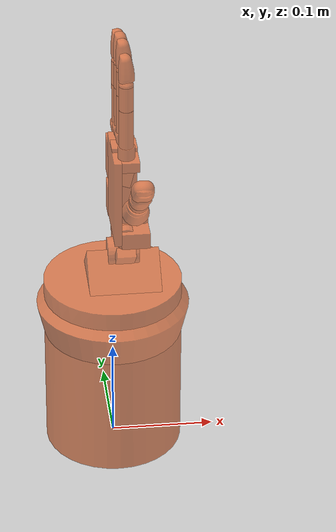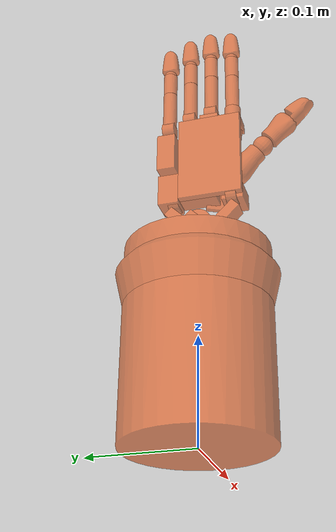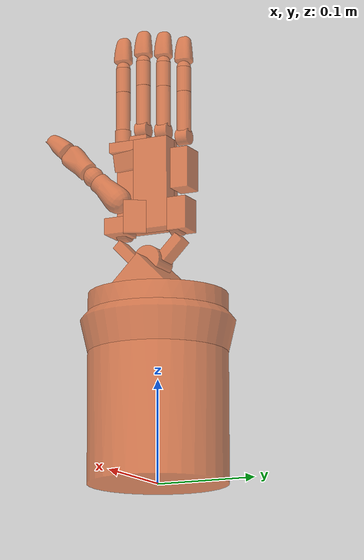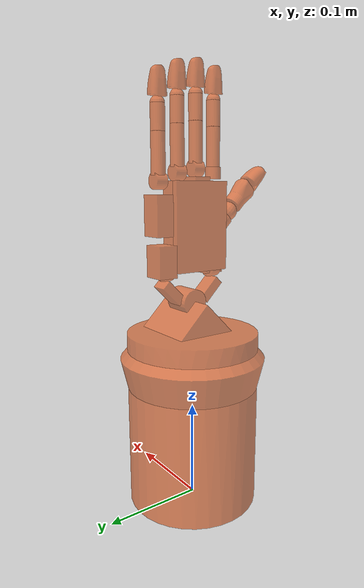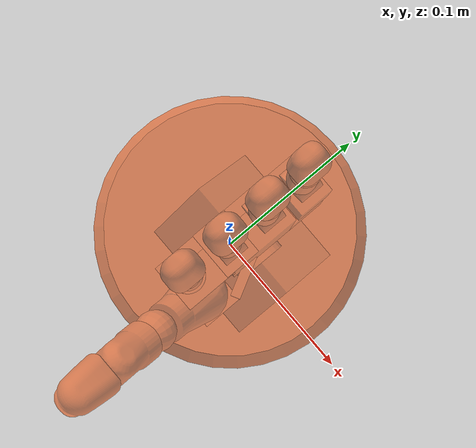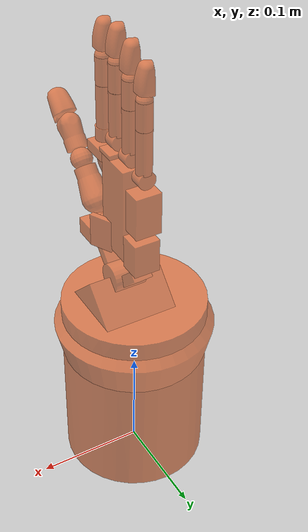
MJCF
<mujoco model="shadow_left">
  <compiler angle="radian" autolimits="true" />
  <option gravity="0 0 0" timestep="0.001" />
  <visual>
    <global offwidth="3840" offheight="2160" />
  </visual>
  <asset>
    <mesh name="forearm_E3M5_collision000" content_type="model/obj" file="meshes/collision/forearm_E3M5_collision000.obj" />
    <mesh name="forearm_E3M5_collision001" content_type="model/obj" file="meshes/collision/forearm_E3M5_collision001.obj" />
    <mesh name="forearm_E3M5_collision002" content_type="model/obj" file="meshes/collision/forearm_E3M5_collision002.obj" />
    <mesh name="f_knuckle_E3M5_collision000" content_type="model/obj" file="meshes/collision/f_knuckle_E3M5_collision000.obj" />
    <mesh name="f_distal_pst_collision000" content_type="model/obj" file="meshes/collision/f_distal_pst_collision000.obj" />
    <mesh name="th_proximal_E3M5_collision000" content_type="model/obj" file="meshes/collision/th_proximal_E3M5_collision000.obj" />
    <mesh name="th_middle_E3M5_collision000" content_type="model/obj" file="meshes/collision/th_middle_E3M5_collision000.obj" />
    <mesh name="th_distal_pst_collision000" content_type="model/obj" file="meshes/collision/th_distal_pst_collision000.obj" />
    <texture type="skybox" builtin="gradient" rgb1="1 1 1" rgb2="1 1 1" width="32" height="512" />
  </asset>
  <worldbody>
    <light pos="0 0 5" dir="0 0 -1" directional="true" />
    <body name="hand_root">
      <body name="forearm" quat="0.707109 0 0 0.707105">
        <inertial pos="0 0 0.09" mass="3" diaginertia="0.0138 0.0138 0.00744" />
        <geom name="forearm_collision_part000" type="mesh" mesh="forearm_E3M5_collision000" group="1" rgba="0.9 0.35 0.1 0.65" />
        <geom name="forearm_collision_part001" type="mesh" mesh="forearm_E3M5_collision001" group="1" rgba="0.9 0.35 0.1 0.65" />
        <geom name="forearm_collision_part002" type="mesh" mesh="forearm_E3M5_collision002" group="1" rgba="0.9 0.35 0.1 0.65" />
        <geom size="0.035 0.035 0.035" pos="0 -0.01 0.165" quat="0.92388 0 0.382682 0" type="box" group="1" rgba="0.9 0.35 0.1 0.65" />
        <body name="wrist" pos="0 -0.01 0.21301">
          <inertial pos="0 0 0.029" quat="0.5 0.5 0.5 0.5" mass="0.1" diaginertia="6.4e-05 4.38e-05 3.5e-05" />
          <joint name="WRJ2" pos="0 0 0" axis="0 -1 0" range="-0.523599 0.174533" actuatorfrcrange="-10 10" damping="0.1" armature="0.0002" frictionloss="0.0" />
          <geom size="0.0135 0.015" quat="0.499998 0.5 0.5 -0.500002" type="cylinder" group="1" rgba="0.9 0.35 0.1 0.65" />
          <geom size="0.011 0.005" pos="0.026 0 0.034" quat="0.707105 0 0.707108 0" type="cylinder" group="1" rgba="0.9 0.35 0.1 0.65" />
          <geom size="0.011 0.005" pos="-0.031 0 0.034" quat="0.707105 0 0.707108 0" type="cylinder" group="1" rgba="0.9 0.35 0.1 0.65" />
          <geom size="0.0135 0.009 0.005" pos="0.021 0 0.011" quat="0.923879 0 -0.382684 0" type="box" group="1" rgba="0.9 0.35 0.1 0.65" />
          <geom size="0.0135 0.009 0.005" pos="-0.026 0 0.01" quat="0.923879 0 0.382684 0" type="box" group="1" rgba="0.9 0.35 0.1 0.65" />
          <body name="palm" pos="0 0 0.034">
            <inertial pos="0 0 0.035" quat="0.707107 0 0 0.707107" mass="0.3" diaginertia="0.0005287 0.0003581 0.000191" />
            <joint name="WRJ1" pos="0 0 0" axis="1 0 0" range="-0.698132 0.488692" actuatorfrcrange="-30 30" damping="0.1" armature="0.0002" frictionloss="0.0" />
            <geom size="0.031 0.0035 0.045" pos="-0.011 0.0085 0.042" type="box" group="1" rgba="0.9 0.35 0.1 0.65" />
            <geom size="0.018 0.0085 0.045" pos="0.002 -0.0035 0.042" type="box" group="1" rgba="0.9 0.35 0.1 0.65" />
            <geom size="0.013 0.0085 0.005" pos="-0.029 -0.0035 0.082" type="box" group="1" rgba="0.9 0.35 0.1 0.65" />
            <geom size="0.013 0.007 0.009" pos="-0.0265 -0.001 0.07" quat="0.987241 0.0990545 -0.0124467 -0.124052" type="box" group="1" rgba="0.9 0.35 0.1 0.65" />
            <geom size="0.0105 0.0135 0.008" pos="-0.0315 -0.0085 0.001" type="box" group="1" rgba="0.9 0.35 0.1 0.65" />
            <geom size="0.011 0.0025 0.016" pos="-0.0125 -0.015 0.009" quat="0.971338 0 0 0.237703" type="box" group="1" rgba="0.9 0.35 0.1 0.65" />
            <geom size="0.009 0.012 0.002" pos="-0.011 0 0.089" type="box" group="1" rgba="0.9 0.35 0.1 0.65" />
            <geom size="0.01 0.012 0.016" pos="0.03 0 0.009" type="box" group="1" rgba="0.9 0.35 0.1 0.65" />
            <body name="ee_link" />
            <body name="imu" pos="0.01785 0.00765 0.049125" quat="2.31079e-07 -2.31079e-07 0.707107 0.707107" />
            <body name="ffknuckle" pos="-0.033 0 0.095">
              <inertial pos="0 0 0" quat="0.5 0.5 -0.5 0.5" mass="0.008" diaginertia="3.2e-07 2.6e-07 2.6e-07" />
              <joint name="FFJ4" pos="0 0 0" axis="0 1 0" range="-0.349066 0.349066" actuatorfrcrange="-2 2" damping="0.1" armature="0.0002" frictionloss="0.0" />
              <geom quat="0.707105 0 0.707108 0" type="mesh" mesh="f_knuckle_E3M5_collision000" group="1" rgba="0.9 0.35 0.1 0.65" />
              <body name="ffproximal">
                <inertial pos="0 0 0.0225" quat="0.707107 0 0 0.707107" mass="0.03" diaginertia="1e-05 9.8e-06 1.8e-06" />
                <joint name="FFJ3" pos="0 0 0" axis="1 0 0" range="-0.261799 1.5708" actuatorfrcrange="-2 2" damping="0.1" armature="0.0002" frictionloss="0.0" />
                <geom size="0.007 0.02" pos="0 0 0.025" type="cylinder" group="1" rgba="0.9 0.35 0.1 0.65" />
                <body name="ffmiddle" pos="0 0 0.045">
                  <inertial pos="0 0 0.0125" quat="0.707107 0 0 0.707107" mass="0.017" diaginertia="2.7e-06 2.6e-06 8.7e-07" />
                  <joint name="FFJ2" pos="0 0 0" axis="1 0 0" range="0 1.5708" actuatorfrcrange="-2 2" damping="0.1" armature="0.0002" frictionloss="0.0" />
                  <geom size="0.007 0.0125" pos="0 0 0.0125" type="cylinder" group="1" rgba="0.9 0.35 0.1 0.65" />
                  <geom size="0.007" group="1" rgba="0.9 0.35 0.1 0.65" />
                  <geom size="0.007" pos="0 0 0.025" group="1" rgba="0.9 0.35 0.1 0.65" />
                  <body name="ffdistal" pos="0 0 0.025">
                    <inertial pos="0 0 0.012" quat="0.707107 0 0 0.707107" mass="0.12" diaginertia="1.1e-05 9.4e-06 5.3e-06" />
                    <joint name="FFJ1" pos="0 0 0" axis="1 0 0" range="0 1.5708" actuatorfrcrange="-2 2" damping="0.1" armature="0.0002" frictionloss="0.0" />
                    <geom type="mesh" mesh="f_distal_pst_collision000" group="1" rgba="0.9 0.35 0.1 0.65" />
                    <body name="fftip" pos="0 0 0.026">
                      <inertial pos="0 0 0" mass="0.001" diaginertia="0 0 0" />
                    </body>
                  </body>
                </body>
              </body>
            </body>
            <body name="mfknuckle" pos="-0.011 0 0.099">
              <inertial pos="0 0 0" quat="0.5 0.5 -0.5 0.5" mass="0.008" diaginertia="3.2e-07 2.6e-07 2.6e-07" />
              <joint name="MFJ4" pos="0 0 0" axis="0 1 0" range="-0.349066 0.349066" actuatorfrcrange="-2 2" damping="0.1" armature="0.0002" frictionloss="0.0" />
              <geom type="mesh" mesh="f_knuckle_E3M5_collision000" group="1" rgba="0.9 0.35 0.1 0.65" />
              <body name="mfproximal">
                <inertial pos="0 0 0.0225" quat="0.707107 0 0 0.707107" mass="0.03" diaginertia="1e-05 9.8e-06 1.8e-06" />
                <joint name="MFJ3" pos="0 0 0" axis="1 0 0" range="-0.261799 1.5708" actuatorfrcrange="-2 2" damping="0.1" armature="0.0002" frictionloss="0.0" />
                <geom size="0.007 0.02" pos="0 0 0.025" type="cylinder" group="1" rgba="0.9 0.35 0.1 0.65" />
                <body name="mfmiddle" pos="0 0 0.045">
                  <inertial pos="0 0 0.0125" quat="0.707107 0 0 0.707107" mass="0.017" diaginertia="2.7e-06 2.6e-06 8.7e-07" />
                  <joint name="MFJ2" pos="0 0 0" axis="1 0 0" range="0 1.5708" actuatorfrcrange="-2 2" damping="0.1" armature="0.0002" frictionloss="0.0" />
                  <geom size="0.007 0.0125" pos="0 0 0.0125" type="cylinder" group="1" rgba="0.9 0.35 0.1 0.65" />
                  <geom size="0.007" group="1" rgba="0.9 0.35 0.1 0.65" />
                  <geom size="0.007" pos="0 0 0.025" group="1" rgba="0.9 0.35 0.1 0.65" />
                  <body name="mfdistal" pos="0 0 0.025">
                    <inertial pos="0 0 0.012" quat="0.707107 0 0 0.707107" mass="0.12" diaginertia="1.1e-05 9.4e-06 5.3e-06" />
                    <joint name="MFJ1" pos="0 0 0" axis="1 0 0" range="0 1.5708" actuatorfrcrange="-2 2" damping="0.1" armature="0.0002" frictionloss="0.0" />
                    <geom type="mesh" mesh="f_distal_pst_collision000" group="1" rgba="0.9 0.35 0.1 0.65" />
                    <body name="mftip" pos="0 0 0.026">
                      <inertial pos="0 0 0" mass="0.001" diaginertia="0 0 0" />
                    </body>
                  </body>
                </body>
              </body>
            </body>
            <body name="rfknuckle" pos="0.011 0 0.095">
              <inertial pos="0 0 0" quat="0.5 0.5 -0.5 0.5" mass="0.008" diaginertia="3.2e-07 2.6e-07 2.6e-07" />
              <joint name="RFJ4" pos="0 0 0" axis="0 -1 0" range="-0.349066 0.349066" actuatorfrcrange="-2 2" damping="0.1" armature="0.0002" frictionloss="0.0" />
              <geom type="mesh" mesh="f_knuckle_E3M5_collision000" group="1" rgba="0.9 0.35 0.1 0.65" />
              <body name="rfproximal">
                <inertial pos="0 0 0.0225" quat="0.707107 0 0 0.707107" mass="0.03" diaginertia="1e-05 9.8e-06 1.8e-06" />
                <joint name="RFJ3" pos="0 0 0" axis="1 0 0" range="-0.261799 1.5708" actuatorfrcrange="-2 2" damping="0.1" armature="0.0002" frictionloss="0.0" />
                <geom size="0.007 0.02" pos="0 0 0.025" type="cylinder" group="1" rgba="0.9 0.35 0.1 0.65" />
                <body name="rfmiddle" pos="0 0 0.045">
                  <inertial pos="0 0 0.0125" quat="0.707107 0 0 0.707107" mass="0.017" diaginertia="2.7e-06 2.6e-06 8.7e-07" />
                  <joint name="RFJ2" pos="0 0 0" axis="1 0 0" range="0 1.5708" actuatorfrcrange="-2 2" damping="0.1" armature="0.0002" frictionloss="0.0" />
                  <geom size="0.007 0.0125" pos="0 0 0.0125" type="cylinder" group="1" rgba="0.9 0.35 0.1 0.65" />
                  <geom size="0.007" group="1" rgba="0.9 0.35 0.1 0.65" />
                  <geom size="0.007" pos="0 0 0.025" group="1" rgba="0.9 0.35 0.1 0.65" />
                  <body name="rfdistal" pos="0 0 0.025">
                    <inertial pos="0 0 0.012" quat="0.707107 0 0 0.707107" mass="0.12" diaginertia="1.1e-05 9.4e-06 5.3e-06" />
                    <joint name="RFJ1" pos="0 0 0" axis="1 0 0" range="0 1.5708" actuatorfrcrange="-2 2" damping="0.1" armature="0.0002" frictionloss="0.0" />
                    <geom type="mesh" mesh="f_distal_pst_collision000" group="1" rgba="0.9 0.35 0.1 0.65" />
                    <body name="rftip" pos="0 0 0.026">
                      <inertial pos="0 0 0" mass="0.001" diaginertia="0 0 0" />
                    </body>
                  </body>
                </body>
              </body>
            </body>
            <body name="lfmetacarpal" pos="0.033 0 0.02071" quat="0.887018 0 0.461735 0">
              <inertial pos="0.0317487 0 0.0223529" quat="0.707107 0 0 0.707107" mass="0.03" diaginertia="1.638e-05 1.45e-05 4.272e-06" />
              <joint name="LFJ5" pos="0 0 0" axis="1 0 0" range="0 0.785398" actuatorfrcrange="-2 2" damping="0.1" armature="0.0002" frictionloss="0.0" />
              <geom size="0.009 0.012 0.02" pos="-0.0269864 0 0.019" quat="0.887018 0 -0.461735 0" type="box" group="1" rgba="0.9 0.35 0.1 0.65" />
              <body name="lfknuckle" pos="-0.0539727 0 0.0377946" quat="0.887018 0 -0.461735 0">
                <inertial pos="0 0 0" quat="0.5 0.5 -0.5 0.5" mass="0.008" diaginertia="3.2e-07 2.6e-07 2.6e-07" />
                <joint name="LFJ4" pos="0 0 0" axis="0 -1 0" range="-0.349066 0.349066" actuatorfrcrange="-2 2" damping="0.1" armature="0.0002" frictionloss="0.0" />
                <geom type="mesh" mesh="f_knuckle_E3M5_collision000" group="1" rgba="0.9 0.35 0.1 0.65" />
                <body name="lfproximal">
                  <inertial pos="0 0 0.0225" quat="0.707107 0 0 0.707107" mass="0.03" diaginertia="1e-05 9.8e-06 1.8e-06" />
                  <joint name="LFJ3" pos="0 0 0" axis="1 0 0" range="-0.261799 1.5708" actuatorfrcrange="-2 2" damping="0.1" armature="0.0002" frictionloss="0.0" />
                  <geom size="0.007 0.02" pos="0 0 0.025" type="cylinder" group="1" rgba="0.9 0.35 0.1 0.65" />
                  <body name="lfmiddle" pos="0 0 0.045">
                    <inertial pos="0 0 0.0125" quat="0.707107 0 0 0.707107" mass="0.017" diaginertia="2.7e-06 2.6e-06 8.7e-07" />
                    <joint name="LFJ2" pos="0 0 0" axis="1 0 0" range="0 1.5708" actuatorfrcrange="-2 2" damping="0.1" armature="0.0002" frictionloss="0.0" />
                    <geom size="0.007 0.0125" pos="0 0 0.0125" type="cylinder" group="1" rgba="0.9 0.35 0.1 0.65" />
                    <geom size="0.007" group="1" rgba="0.9 0.35 0.1 0.65" />
                    <geom size="0.007" pos="0 0 0.025" group="1" rgba="0.9 0.35 0.1 0.65" />
                    <body name="lfdistal" pos="0 0 0.025">
                      <inertial pos="0 0 0.012" quat="0.707107 0 0 0.707107" mass="0.12" diaginertia="1.1e-05 9.4e-06 5.3e-06" />
                      <joint name="LFJ1" pos="0 0 0" axis="1 0 0" range="0 1.5708" actuatorfrcrange="-2 2" damping="0.1" armature="0.0002" frictionloss="0.0" />
                      <geom type="mesh" mesh="f_distal_pst_collision000" group="1" rgba="0.9 0.35 0.1 0.65" />
                      <body name="lftip" pos="0 0 0.026">
                        <inertial pos="0 0 0" mass="0.001" diaginertia="0 0 0" />
                      </body>
                    </body>
                  </body>
                </body>
              </body>
            </body>
            <body name="thbase" pos="-0.034 -0.00858 0.029" quat="0.653281 -0.270598 -0.270598 0.653281">
              <inertial pos="0 0 0" mass="0.01" diaginertia="1.6e-07 1.6e-07 1.6e-07" />
              <joint name="THJ5" pos="0 0 0" axis="0 0 1" range="-1.0472 1.0472" actuatorfrcrange="-5 5" damping="0.1" armature="0.0002" frictionloss="0.0" />
              <geom size="0.011" group="1" rgba="0.9 0.35 0.1 0.65" />
              <body name="thproximal">
                <inertial pos="0 0 0.019" mass="0.04" diaginertia="1.36e-05 1.36e-05 3.13e-06" />
                <joint name="THJ4" pos="0 0 0" axis="0 -1 0" range="0 1.22173" actuatorfrcrange="-3 3" damping="0.1" armature="0.0002" frictionloss="0.0" />
                <geom quat="0.707107 0 0 0.707107" type="mesh" mesh="th_proximal_E3M5_collision000" group="1" rgba="0.9 0.35 0.1 0.65" />
                <body name="thhub" pos="0 0 0.038">
                  <inertial pos="0 0 0" mass="0.005" diaginertia="1e-06 1e-06 3e-07" />
                  <joint name="THJ3" pos="0 0 0" axis="0 -1 0" range="-0.20944 0.20944" actuatorfrcrange="-2 2" damping="0.1" armature="0.0002" frictionloss="0.0" />
                  <geom size="0.01" group="1" rgba="0.9 0.35 0.1 0.65" />
                  <body name="thmiddle">
                    <inertial pos="0 0 0.016" mass="0.02" diaginertia="5.1e-06 5.1e-06 1.21e-06" />
                    <joint name="THJ2" pos="0 0 0" axis="1 0 0" range="-0.698132 0.698132" actuatorfrcrange="-2 2" damping="0.1" armature="0.0002" frictionloss="0.0" />
                    <geom type="mesh" mesh="th_middle_E3M5_collision000" group="1" rgba="0.9 0.35 0.1 0.65" />
                    <body name="thdistal" pos="0 0 0.032">
                      <inertial pos="0 0 0.01375" quat="0.707107 0 0 0.707107" mass="0.16" diaginertia="2.2e-05 2.1e-05 1e-05" />
                      <joint name="THJ1" pos="0 0 0" axis="1 0 0" range="-0.261799 1.5708" actuatorfrcrange="-1 1" damping="0.1" armature="0.0002" frictionloss="0.0" />
                      <geom type="mesh" mesh="th_distal_pst_collision000" group="1" rgba="0.9 0.35 0.1 0.65" />
                      <body name="thtip" pos="0 0 0.0275">
                        <inertial pos="0 0 0" mass="0.001" diaginertia="0 0 0" />
                      </body>
                    </body>
                  </body>
                </body>
              </body>
            </body>
          </body>
        </body>
      </body>
    </body>
  </worldbody>
  <contact>
    <exclude name="ex_forearm_wrist" body1="forearm" body2="wrist" />
    <exclude name="ex_wrist_palm" body1="wrist" body2="palm" />
    <exclude name="ex_palm_ee_link" body1="palm" body2="ee_link" />
    <exclude name="ex_palm_imu" body1="palm" body2="imu" />
    <exclude name="ex_palm_ffknuckle" body1="palm" body2="ffknuckle" />
    <exclude name="ex_ffknuckle_ffproximal" body1="ffknuckle" body2="ffproximal" />
    <exclude name="ex_ffproximal_ffmiddle" body1="ffproximal" body2="ffmiddle" />
    <exclude name="ex_ffmiddle_ffdistal" body1="ffmiddle" body2="ffdistal" />
    <exclude name="ex_ffdistal_fftip" body1="ffdistal" body2="fftip" />
    <exclude name="ex_palm_mfknuckle" body1="palm" body2="mfknuckle" />
    <exclude name="ex_mfknuckle_mfproximal" body1="mfknuckle" body2="mfproximal" />
    <exclude name="ex_mfproximal_mfmiddle" body1="mfproximal" body2="mfmiddle" />
    <exclude name="ex_mfmiddle_mfdistal" body1="mfmiddle" body2="mfdistal" />
    <exclude name="ex_mfdistal_mftip" body1="mfdistal" body2="mftip" />
    <exclude name="ex_palm_rfknuckle" body1="palm" body2="rfknuckle" />
    <exclude name="ex_rfknuckle_rfproximal" body1="rfknuckle" body2="rfproximal" />
    <exclude name="ex_rfproximal_rfmiddle" body1="rfproximal" body2="rfmiddle" />
    <exclude name="ex_rfmiddle_rfdistal" body1="rfmiddle" body2="rfdistal" />
    <exclude name="ex_rfdistal_rftip" body1="rfdistal" body2="rftip" />
    <exclude name="ex_palm_lfmetacarpal" body1="palm" body2="lfmetacarpal" />
    <exclude name="ex_lfmetacarpal_lfknuckle" body1="lfmetacarpal" body2="lfknuckle" />
    <exclude name="ex_lfknuckle_lfproximal" body1="lfknuckle" body2="lfproximal" />
    <exclude name="ex_lfproximal_lfmiddle" body1="lfproximal" body2="lfmiddle" />
    <exclude name="ex_lfmiddle_lfdistal" body1="lfmiddle" body2="lfdistal" />
    <exclude name="ex_lfdistal_lftip" body1="lfdistal" body2="lftip" />
    <exclude name="ex_palm_thbase" body1="palm" body2="thbase" />
    <exclude name="ex_thbase_thproximal" body1="thbase" body2="thproximal" />
    <exclude name="ex_thproximal_thhub" body1="thproximal" body2="thhub" />
    <exclude name="ex_thhub_thmiddle" body1="thhub" body2="thmiddle" />
    <exclude name="ex_thmiddle_thdistal" body1="thmiddle" body2="thdistal" />
    <exclude name="ex_thdistal_thtip" body1="thdistal" body2="thtip" />
  </contact>
  <equality />
  <actuator>
    <position name="WRJ2_actuator" joint="WRJ2" kp="1" forcerange="-1 1" ctrlrange="-0.523598775598 0.174532925199" />
    <position name="WRJ1_actuator" joint="WRJ1" kp="1" forcerange="-1 1" ctrlrange="-0.698131700798 0.488692190558" />
    <position name="FFJ4_actuator" joint="FFJ4" kp="1" forcerange="-1 1" ctrlrange="-0.349065850399 0.349065850399" />
    <position name="FFJ3_actuator" joint="FFJ3" kp="1" forcerange="-1 1" ctrlrange="-0.261799387799 1.57079632679" />
    <position name="FFJ2_actuator" joint="FFJ2" kp="1" forcerange="-1 1" ctrlrange="0 1.57079632679" />
    <position name="FFJ1_actuator" joint="FFJ1" kp="1" forcerange="-1 1" ctrlrange="0 1.57079632679" />
    <position name="MFJ4_actuator" joint="MFJ4" kp="1" forcerange="-1 1" ctrlrange="-0.349065850399 0.349065850399" />
    <position name="MFJ3_actuator" joint="MFJ3" kp="1" forcerange="-1 1" ctrlrange="-0.261799387799 1.57079632679" />
    <position name="MFJ2_actuator" joint="MFJ2" kp="1" forcerange="-1 1" ctrlrange="0 1.57079632679" />
    <position name="MFJ1_actuator" joint="MFJ1" kp="1" forcerange="-1 1" ctrlrange="0 1.57079632679" />
    <position name="RFJ4_actuator" joint="RFJ4" kp="1" forcerange="-1 1" ctrlrange="-0.349065850399 0.349065850399" />
    <position name="RFJ3_actuator" joint="RFJ3" kp="1" forcerange="-1 1" ctrlrange="-0.261799387799 1.57079632679" />
    <position name="RFJ2_actuator" joint="RFJ2" kp="1" forcerange="-1 1" ctrlrange="0 1.57079632679" />
    <position name="RFJ1_actuator" joint="RFJ1" kp="1" forcerange="-1 1" ctrlrange="0 1.57079632679" />
    <position name="LFJ5_actuator" joint="LFJ5" kp="1" forcerange="-1 1" ctrlrange="0 0.785398163397" />
    <position name="LFJ4_actuator" joint="LFJ4" kp="1" forcerange="-1 1" ctrlrange="-0.349065850399 0.349065850399" />
    <position name="LFJ3_actuator" joint="LFJ3" kp="1" forcerange="-1 1" ctrlrange="-0.261799387799 1.57079632679" />
    <position name="LFJ2_actuator" joint="LFJ2" kp="1" forcerange="-1 1" ctrlrange="0 1.57079632679" />
    <position name="LFJ1_actuator" joint="LFJ1" kp="1" forcerange="-1 1" ctrlrange="0 1.57079632679" />
    <position name="THJ5_actuator" joint="THJ5" kp="1" forcerange="-1 1" ctrlrange="-1.0471975512 1.0471975512" />
    <position name="THJ4_actuator" joint="THJ4" kp="1" forcerange="-1 1" ctrlrange="0.0 1.2217304764" />
    <position name="THJ3_actuator" joint="THJ3" kp="1" forcerange="-1 1" ctrlrange="-0.209439510239 0.209439510239" />
    <position name="THJ2_actuator" joint="THJ2" kp="1" forcerange="-1 1" ctrlrange="-0.698131700798 0.698131700798" />
    <position name="THJ1_actuator" joint="THJ1" kp="1" forcerange="-1 1" ctrlrange="-0.261799387799 1.57079632679" />
  </actuator>
</mujoco>
